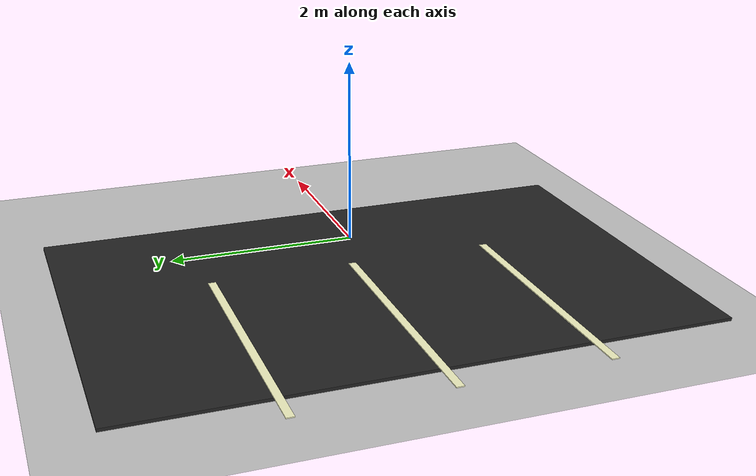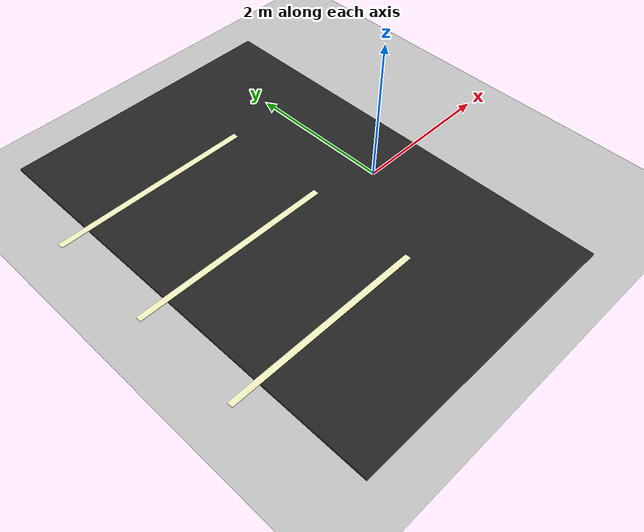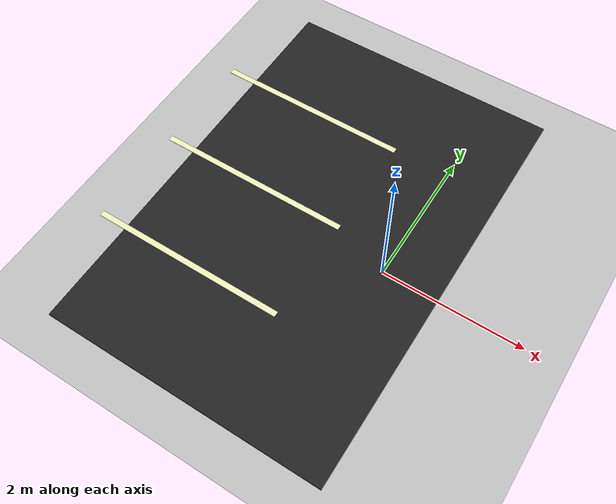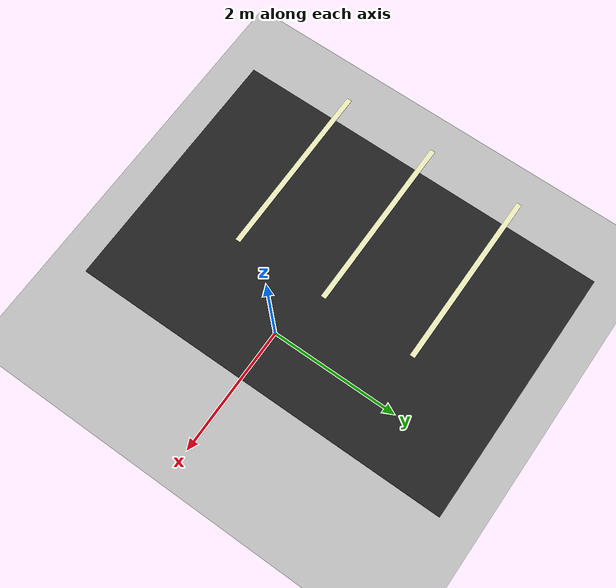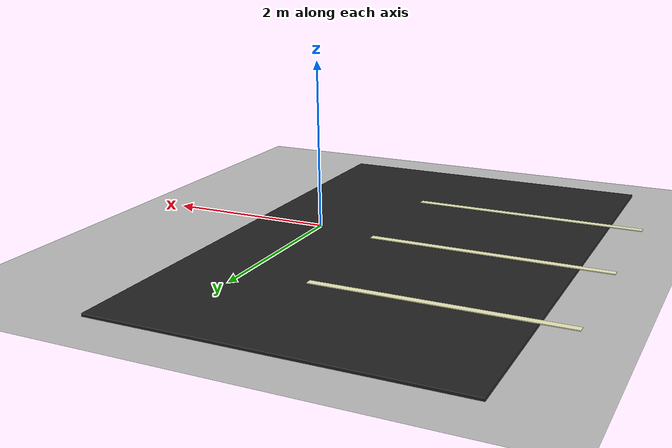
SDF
<?xml version="1.0"?>
<sdf version="1.4">
  <world name="racecar_parking_1">

    <include>
      <uri>model://sun</uri>
    </include>

    <gui>
      <camera name='main'>
        <pose>0 0 10 0 1.571 0</pose>
      </camera>
    </gui>

    <model name="ground_plane">
      <static>true</static>
      <link name="link">
        <collision name="collision">
          <geometry>
            <plane>
              <normal>0 0 1</normal>
              <size>150 150</size>
            </plane>
          </geometry>
          <surface>
            <friction>
              <ode>
                <mu>100</mu>
                <mu2>50</mu2>
              </ode>
            </friction>
          </surface>
        </collision>
        <visual name="visual">
          <cast_shadows>false</cast_shadows>
          <geometry>
            <plane>
              <normal>0 0 1</normal>
              <size>150 150</size>
            </plane>
          </geometry>
          <material>
            <script>
              <uri>file://media/materials/scripts/gazebo.material</uri>
              <name>Gazebo/Grey</name>
            </script>
          </material>
        </visual>
      </link>
    </model>

    <include>
      <uri>model://racecar_description/models/parking_1</uri>
      <pose>-1.2 0.25 0 0 0 -1.57</pose>
    </include>

  </world>
</sdf>

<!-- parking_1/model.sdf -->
<sdf version="1.6">
  <model name="parking_1">
    <static>true</static>
    <link name="surface">
      <collision name="collision">
        <geometry><box><size>6 4 0.05</size></box></geometry>
      </collision>
      <visual name="visual">
        <geometry><box><size>6 4 0.05</size></box></geometry>
        <material>
          <ambient>0.15 0.15 0.15 1</ambient>
          <diffuse>0.15 0.15 0.15 1</diffuse>
        </material>
      </visual>
    </link>
    <link name="divider_1">
      <pose>-1.5 -1.0 0.051 0 0 0</pose>
      <visual name="visual">
        <geometry><box><size>0.08 2.8 0.01</size></box></geometry>
        <material><ambient>1 1 0.8 1</ambient><diffuse>1 1 0.8 1</diffuse></material>
      </visual>
    </link>
    <link name="divider_2">
      <pose>0 -1.0 0.051 0 0 0</pose>
      <visual name="visual">
        <geometry><box><size>0.08 2.8 0.01</size></box></geometry>
        <material><ambient>1 1 0.8 1</ambient><diffuse>1 1 0.8 1</diffuse></material>
      </visual>
    </link>
    <link name="divider_3">
      <pose>1.5 -1.0 0.051 0 0 0</pose>
      <visual name="visual">
        <geometry><box><size>0.08 2.8 0.01</size></box></geometry>
        <material><ambient>1 1 0.8 1</ambient><diffuse>1 1 0.8 1</diffuse></material>
      </visual>
    </link>
  </model>
</sdf>
